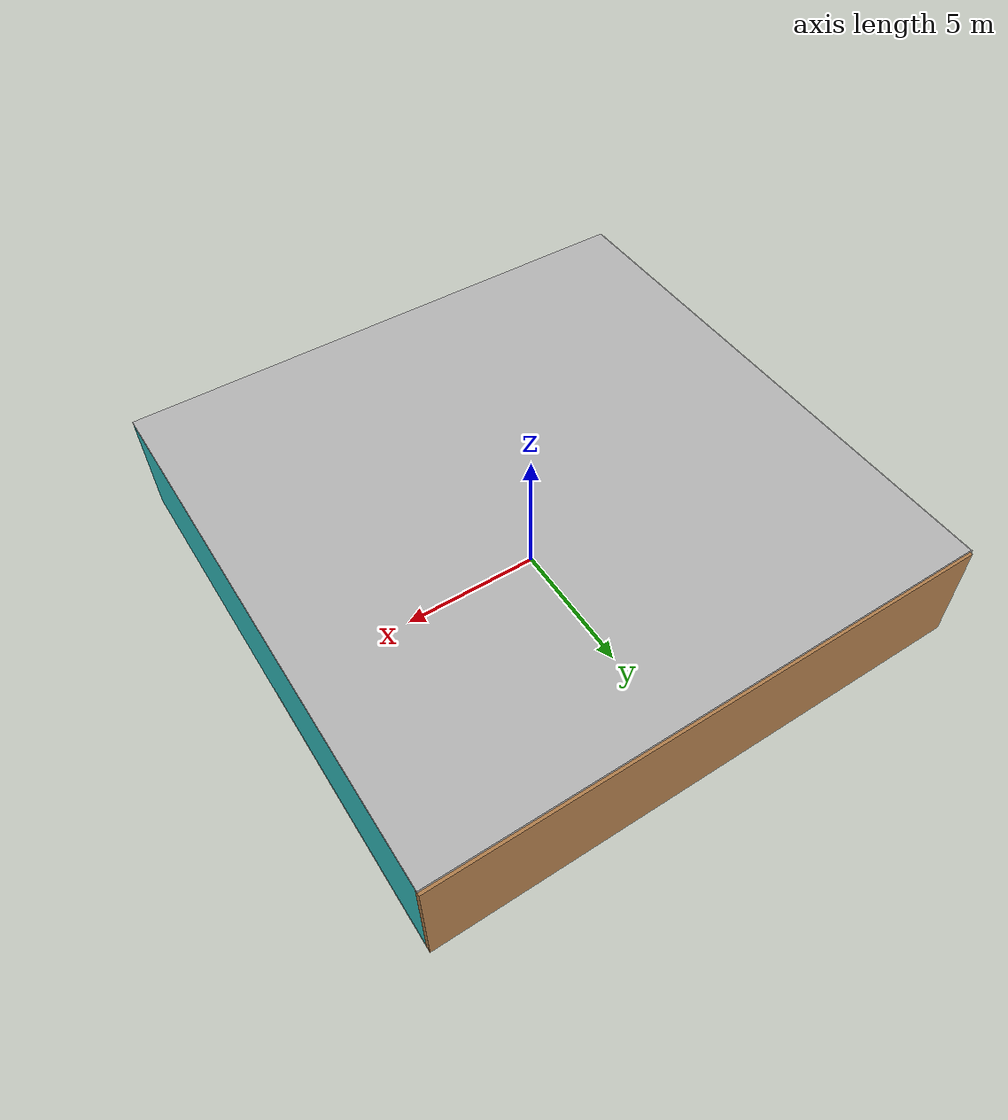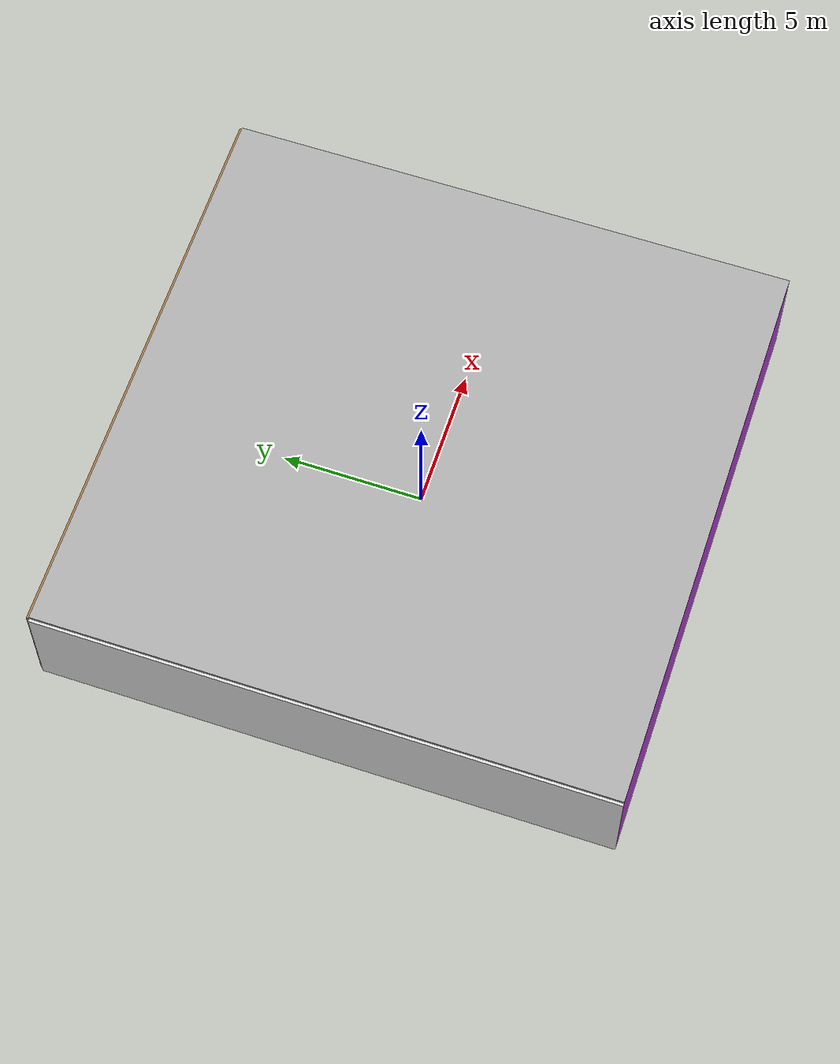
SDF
<sdf version="1.4">
 <world name="default">
  <physics type="ode">
   <max_step_size>0.001</max_step_size>
   <real_time_factor>1</real_time_factor>
   <real_time_update_rate>1000</real_time_update_rate>
   <gravity>0 0 -9.8</gravity>
  </physics>
  <scene><ambient>0.4 0.4 0.4 1</ambient><background>0.7 0.7 0.7 1</background><shadows>1</shadows></scene>
  <model name="Surrounding">
   <static>1</static>
   <link name="Ceiling">
    <collision name="Ceiling_Collision"><geometry><box><size>20 20 0.1</size></box></geometry></collision>
    <visual name="Ceiling_Visual">
     <geometry><box><size>20 20 0.1</size></box></geometry>
     <material>
      <script><uri>file://media/materials/scripts/gazebo.material</uri><name>Gazebo/CloudySky</name></script>
     </material>
    </visual>
    <pose>0 0 4.05 0 0 0</pose>
   </link>
   <link name="Wall_South">
    <collision name="Wall_South_Collision">
     <geometry><box><size>20 0 4</size></box></geometry>
     <pose>0 0 2 0 -0 0</pose>
    </collision>
    <visual name="Wall_South_Visual">
     <pose>0 0 2 0 -0 0</pose>
     <geometry><box><size>20 0 4</size></box></geometry>
     <material>
      <script><uri>file://media/materials/scripts/gazebo.material</uri><name>Gazebo/PurpleGlow</name></script>
     </material>
    </visual>
    <velocity_decay><linear>0</linear><angular>0</angular></velocity_decay>
    <pose>0 -10 0 0 -0 0</pose>
   </link>
   <link name="Wall_East">
    <collision name="Wall_21_Collision">
     <geometry><box><size>20 0 4</size></box></geometry>
     <pose>0 0 2 0 -0 0</pose>
    </collision>
    <visual name="Wall_21_Visual">
     <pose>0 0 2 0 -0 0</pose>
     <geometry><box><size>20 0 4</size></box></geometry>
     <material>
      <script><uri>file://media/materials/scripts/gazebo.material</uri><name>Gazebo/TurquoiseGlow</name></script>
     </material>
    </visual>
    <velocity_decay><linear>0</linear><angular>0</angular></velocity_decay>
    <pose>10 0 0 0 -0 1.5708</pose>
   </link>
   <link name="Wall_North">
    <collision name="Wall_22_Collision">
     <geometry><box><size>20 0.2 4</size></box></geometry>
     <pose>0 0 2 0 -0 0</pose>
    </collision>
    <visual name="Wall_22_Visual">
     <pose>0 0 2 0 -0 0</pose>
     <geometry><box><size>20 0.2 4</size></box></geometry>
     <material>
      <script><uri>file://media/materials/scripts/gazebo.material</uri><name>Gazebo/WoodFloor</name></script>
     </material>
    </visual>
    <velocity_decay><linear>0</linear><angular>0</angular></velocity_decay>
    <pose>0 10 0 0 -0 0</pose>
   </link>
   <link name="Wall_West">
    <collision name="Wall_23_Collision">
     <geometry><box><size>20 0.2 4</size></box></geometry>
     <pose>0 0 2 0 -0 0</pose>
    </collision>
    <visual name="Wall_23_Visual">
     <pose>0 0 2 0 -0 0</pose>
     <geometry><box><size>20 0.2 4</size></box></geometry>
     <material>
      <script><uri>file://media/materials/scripts/gazebo.material</uri><name>Gazebo/White</name></script>
     </material>
    </visual>
    <velocity_decay><linear>0</linear><angular>0</angular></velocity_decay>
    <pose>-10 0 0 0 0 -1.5708</pose>
   </link>
   <link name="Ground_link">
    <collision name="collision">
     <pose>0 0 .05 0 -0 0</pose>
     <geometry><box><size>20 20 0.1</size></box></geometry>
    </collision>
    <visual name="visual">
     <pose>0 0 .05 0 -0 0</pose>
     <geometry><box><size>20 20 0.1</size></box></geometry>
     <material>
      <script><uri>file://media/materials/scripts/gazebo.material</uri><name>Gazebo/PaintedWall</name></script>
     </material>
    </visual>
   </link>
   <static>1</static>
  </model>
  <spherical_coordinates>
   <surface_model>EARTH_WGS84</surface_model>
   <latitude_deg>0</latitude_deg>
   <longitude_deg>0</longitude_deg>
   <elevation>0</elevation>
   <heading_deg>0</heading_deg>
  </spherical_coordinates>
  <light name="lightball_0" type="diffuse">
   <diffuse>0.8 0.8 0.8 1</diffuse>
   <specular>0.2 0.2 0.2 1</specular>
   <attenuation>
    <range>100</range>
    <constant>0.7</constant>
    <linear>0.01</linear>
    <quadratic>0.001</quadratic>
   </attenuation>
   <direction>-0.5 0.1 -0.9</direction>
   <pose>9.64433875979 6.06521737326 1.02108152696 0 0 0</pose>
  </light>
  <light name="lightball_1" type="diffuse">
   <diffuse>0.8 0.8 0.8 1</diffuse>
   <specular>0.2 0.2 0.2 1</specular>
   <attenuation>
    <range>100</range>
    <constant>0.7</constant>
    <linear>0.01</linear>
    <quadratic>0.001</quadratic>
   </attenuation>
   <direction>-0.5 0.1 -0.9</direction>
   <pose>1.63910477076 8.01365467879 1.90745100916 0 0 0</pose>
  </light>
  <light name="lightball_2" type="diffuse">
   <diffuse>0.8 0.8 0.8 1</diffuse>
   <specular>0.2 0.2 0.2 1</specular>
   <attenuation>
    <range>100</range>
    <constant>0.7</constant>
    <linear>0.01</linear>
    <quadratic>0.001</quadratic>
   </attenuation>
   <direction>-0.5 0.1 -0.9</direction>
   <pose>-5.49925691482 -5.33679758363 1.08726005713 0 0 0</pose>
  </light>
  <light name="lightball_3" type="diffuse">
   <diffuse>0.8 0.8 0.8 1</diffuse>
   <specular>0.2 0.2 0.2 1</specular>
   <attenuation>
    <range>100</range>
    <constant>0.7</constant>
    <linear>0.01</linear>
    <quadratic>0.001</quadratic>
   </attenuation>
   <direction>-0.5 0.1 -0.9</direction>
   <pose>-0.00436062779611 -7.60900972718 3.07124576949 0 0 0</pose>
  </light>
  <light name="lightball_4" type="diffuse">
   <diffuse>0.8 0.8 0.8 1</diffuse>
   <specular>0.2 0.2 0.2 1</specular>
   <attenuation>
    <range>100</range>
    <constant>0.7</constant>
    <linear>0.01</linear>
    <quadratic>0.001</quadratic>
   </attenuation>
   <direction>-0.5 0.1 -0.9</direction>
   <pose>1.20841395962 -1.56496937089 1.50731816059 0 0 0</pose>
  </light>
  <light name="lightball_5" type="diffuse">
   <diffuse>0.8 0.8 0.8 1</diffuse>
   <specular>0.2 0.2 0.2 1</specular>
   <attenuation>
    <range>100</range>
    <constant>0.7</constant>
    <linear>0.01</linear>
    <quadratic>0.001</quadratic>
   </attenuation>
   <direction>-0.5 0.1 -0.9</direction>
   <pose>9.10153423154 4.28250438228 2.53291392313 0 0 0</pose>
  </light>
  <light name="lightball_6" type="diffuse">
   <diffuse>0.8 0.8 0.8 1</diffuse>
   <specular>0.2 0.2 0.2 1</specular>
   <attenuation>
    <range>100</range>
    <constant>0.7</constant>
    <linear>0.01</linear>
    <quadratic>0.001</quadratic>
   </attenuation>
   <direction>-0.5 0.1 -0.9</direction>
   <pose>4.28630937831 3.11439465343 0.702772582099 0 0 0</pose>
  </light>
  <light name="lightball_7" type="diffuse">
   <diffuse>0.8 0.8 0.8 1</diffuse>
   <specular>0.2 0.2 0.2 1</specular>
   <attenuation>
    <range>100</range>
    <constant>0.7</constant>
    <linear>0.01</linear>
    <quadratic>0.001</quadratic>
   </attenuation>
   <direction>-0.5 0.1 -0.9</direction>
   <pose>2.25898340931 2.76677687008 2.07072741404 0 0 0</pose>
  </light>
  <light name="lightball_8" type="diffuse">
   <diffuse>0.8 0.8 0.8 1</diffuse>
   <specular>0.2 0.2 0.2 1</specular>
   <attenuation>
    <range>100</range>
    <constant>0.7</constant>
    <linear>0.01</linear>
    <quadratic>0.001</quadratic>
   </attenuation>
   <direction>-0.5 0.1 -0.9</direction>
   <pose>-1.51217290778 -1.85833640146 2.06361758028 0 0 0</pose>
  </light>
  <light name="lightball_9" type="diffuse">
   <diffuse>0.8 0.8 0.8 1</diffuse>
   <specular>0.2 0.2 0.2 1</specular>
   <attenuation>
    <range>100</range>
    <constant>0.7</constant>
    <linear>0.01</linear>
    <quadratic>0.001</quadratic>
   </attenuation>
   <direction>-0.5 0.1 -0.9</direction>
   <pose>-8.63035327085 -4.18936028021 2.56653884027 0 0 0</pose>
  </light>
  <light name="lightball_10" type="diffuse">
   <diffuse>0.8 0.8 0.8 1</diffuse>
   <specular>0.2 0.2 0.2 1</specular>
   <attenuation>
    <range>100</range>
    <constant>0.7</constant>
    <linear>0.01</linear>
    <quadratic>0.001</quadratic>
   </attenuation>
   <direction>-0.5 0.1 -0.9</direction>
   <pose>-5.89415311072 -7.96152308152 3.76848657116 0 0 0</pose>
  </light>
  <light name="lightball_11" type="diffuse">
   <diffuse>0.8 0.8 0.8 1</diffuse>
   <specular>0.2 0.2 0.2 1</specular>
   <attenuation>
    <range>100</range>
    <constant>0.7</constant>
    <linear>0.01</linear>
    <quadratic>0.001</quadratic>
   </attenuation>
   <direction>-0.5 0.1 -0.9</direction>
   <pose>4.86135441467 -6.17201936254 3.78555561408 0 0 0</pose>
  </light>
  <light name="lightball_12" type="diffuse">
   <diffuse>0.8 0.8 0.8 1</diffuse>
   <specular>0.2 0.2 0.2 1</specular>
   <attenuation>
    <range>100</range>
    <constant>0.7</constant>
    <linear>0.01</linear>
    <quadratic>0.001</quadratic>
   </attenuation>
   <direction>-0.5 0.1 -0.9</direction>
   <pose>-8.53340460183 -8.6665996598 3.58439222172 0 0 0</pose>
  </light>
  <light name="lightball_13" type="diffuse">
   <diffuse>0.8 0.8 0.8 1</diffuse>
   <specular>0.2 0.2 0.2 1</specular>
   <attenuation>
    <range>100</range>
    <constant>0.7</constant>
    <linear>0.01</linear>
    <quadratic>0.001</quadratic>
   </attenuation>
   <direction>-0.5 0.1 -0.9</direction>
   <pose>-0.804196314632 3.95148139962 0.977262549789 0 0 0</pose>
  </light>
  <include><uri>model://table</uri><pose>-6.72204330326 -6.91686908233 0 0 0 2.2991340438</pose></include>
  <include>
   <uri>model://robocup_3Dsim_goal</uri>
   <pose>-7.85546980453 6.88535962519 0 0 0 2.40449168751</pose>
  </include>
  <include>
   <uri>model://robocup_3Dsim_goal</uri>
   <pose>1.27698009352 -7.36676092079 0 0 0 1.65292249637</pose>
  </include>
  <include>
   <uri>model://robocup_3Dsim_goal</uri>
   <pose>5.19477877479 -7.94503159165 0 0 0 0.127210409981</pose>
  </include>
  <include><uri>model://table</uri><pose>7.0083798905 2.12533576854 0 0 0 0.644511885078</pose></include>
 </world>
</sdf>

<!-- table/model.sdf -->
<sdf version="1.5">
  <model name="table">
    <static>true</static>
    <link name="link">
      <collision name="surface">
        <pose>0 0 1.0 0 0 0</pose>
        <geometry>
          <box>
            <size>1.5 0.8 0.03</size>
          </box>
        </geometry>
        <surface>
          <friction>
            <ode>
              <mu>0.6</mu>
              <mu2>0.6</mu2>
            </ode>
          </friction>
        </surface>
      </collision>
      <visual name="visual1">
        <pose>0 0 1.0 0 0 0</pose>
        <geometry>
          <box>
            <size>1.5 0.8 0.03</size>
          </box>
        </geometry>
        <material>
          <script>
            <uri>model://media/materials/scripts/gazebo.material</uri>
            <name>Gazebo/Wood</name>
          </script>
        </material>
      </visual>
      <collision name="front_left_leg">
        <pose>0.68 0.38 0.5 0 0 0</pose>
        <geometry>
          <cylinder>
            <radius>0.02</radius>
            <length>1.0</length>
          </cylinder>
        </geometry>
      </collision>
      <visual name="front_left_leg">
        <pose>0.68 0.38 0.5 0 0 0</pose>
        <geometry>
          <cylinder>
            <radius>0.02</radius>
            <length>1.0</length>
          </cylinder>
        </geometry>
        <material>
          <script>
            <uri>model://media/materials/scripts/gazebo.material</uri>
            <name>Gazebo/Grey</name>
          </script>
        </material>
      </visual>
      <collision name="front_right_leg">
        <pose>0.68 -0.38 0.5 0 0 0</pose>
        <geometry>
          <cylinder>
            <radius>0.02</radius>
            <length>1.0</length>
          </cylinder>
        </geometry>
      </collision>
      <visual name="front_right_leg">
        <pose>0.68 -0.38 0.5 0 0 0</pose>
        <geometry>
          <cylinder>
            <radius>0.02</radius>
            <length>1.0</length>
          </cylinder>
        </geometry>
        <material>
          <script>
            <uri>model://media/materials/scripts/gazebo.material</uri>
            <name>Gazebo/Grey</name>
          </script>
        </material>
      </visual>
      <collision name="back_right_leg">
        <pose>-0.68 -0.38 0.5 0 0 0</pose>
        <geometry>
          <cylinder>
            <radius>0.02</radius>
            <length>1.0</length>
          </cylinder>
        </geometry>
      </collision>
      <visual name="back_right_leg">
        <pose>-0.68 -0.38 0.5 0 0 0</pose>
        <geometry>
          <cylinder>
            <radius>0.02</radius>
            <length>1.0</length>
          </cylinder>
        </geometry>
        <material>
          <script>
            <uri>model://media/materials/scripts/gazebo.material</uri>
            <name>Gazebo/Grey</name>
          </script>
        </material>
      </visual>
      <collision name="back_left_leg">
        <pose>-0.68 0.38 0.5 0 0 0</pose>
        <geometry>
          <cylinder>
            <radius>0.02</radius>
            <length>1.0</length>
          </cylinder>
        </geometry>
      </collision>
      <visual name="back_left_leg">
        <pose>-0.68 0.38 0.5 0 0 0</pose>
        <geometry>
          <cylinder>
            <radius>0.02</radius>
            <length>1.0</length>
          </cylinder>
        </geometry>
        <material>
          <script>
            <uri>model://media/materials/scripts/gazebo.material</uri>
            <name>Gazebo/Grey</name>
          </script>
        </material>
      </visual>
    </link>
  </model>
</sdf>

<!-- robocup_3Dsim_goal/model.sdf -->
<sdf version="1.5">
  <model name="robocup_3d_goal">
    <static>true</static>
    <link name="left_post">
      <pose>0 1.05 0.45 0 0 0</pose>
      <collision name="collision">
        <geometry>
          <cylinder>
            <radius>0.05</radius>
            <length>0.9</length>
          </cylinder>
        </geometry>
      </collision>
      <visual name="visual">
        <geometry>
          <cylinder>
            <radius>0.05</radius>
            <length>0.9</length>
          </cylinder>
        </geometry>
        <material>
          <script>
            <uri>file://media/materials/scripts/gazebo.material</uri>
            <name>Gazebo/ZincYellow</name>
          </script>
        </material>
      </visual>
    </link>
    <link name="left_support_horiz_lower">
      <pose>0.30 1.05 0.01 0 0 0</pose>
      <collision name="collision">
        <geometry>
          <box>
            <size>0.50 0.02 0.02</size>
          </box>
        </geometry>
      </collision>
      <visual name="visual">
        <geometry>
          <box>
            <size>0.50 0.02 0.02</size>
          </box>
        </geometry>
        <material>
          <script>
            <uri>file://media/materials/scripts/gazebo.material</uri>
            <name>Gazebo/White</name>
          </script>
        </material>
      </visual>
    </link>
    <link name="left_support_horiz_upper">
      <pose>0.30 1.05 0.79 0 0 0</pose>
      <collision name="collision">
        <geometry>
          <box>
            <size>0.50 0.02 0.02</size>
          </box>
        </geometry>
      </collision>
      <visual name="visual">
        <geometry>
          <box>
            <size>0.50 0.02 0.02</size>
          </box>
        </geometry>
        <material>
          <script>
            <uri>file://media/materials/scripts/gazebo.material</uri>
            <name>Gazebo/White</name>
          </script>
        </material>
      </visual>
    </link>
    <link name="left_support_vertical">
      <pose>0.56 1.05 0.4 0 1.5708 0</pose>
      <collision name="collision">
        <geometry>
          <box>
            <size>0.80 0.02 0.02</size>
          </box>
        </geometry>
      </collision>
      <visual name="visual">
        <geometry>
          <box>
            <size>0.80 0.02 0.02</size>
          </box>
        </geometry>
        <material>
          <script>
            <uri>file://media/materials/scripts/gazebo.material</uri>
            <name>Gazebo/White</name>
          </script>
        </material>
      </visual>
    </link>
    <link name="right_support_horiz_lower">
      <pose>0.30 -1.05 0.01 0 0 0</pose>
      <collision name="collision">
        <geometry>
          <box>
            <size>0.50 0.02 0.02</size>
          </box>
        </geometry>
      </collision>
      <visual name="visual">
        <geometry>
          <box>
            <size>0.50 0.02 0.02</size>
          </box>
        </geometry>
        <material>
          <script>
            <uri>file://media/materials/scripts/gazebo.material</uri>
            <name>Gazebo/White</name>
          </script>
        </material>
      </visual>
    </link>
    <link name="right_support_horiz_upper">
      <pose>0.30 -1.05 0.79 0 0 0</pose>
      <collision name="collision">
        <geometry>
          <box>
            <size>0.50 0.02 0.02</size>
          </box>
        </geometry>
      </collision>
      <visual name="visual">
        <geometry>
          <box>
            <size>0.50 0.02 0.02</size>
          </box>
        </geometry>
        <material>
          <script>
            <uri>file://media/materials/scripts/gazebo.material</uri>
            <name>Gazebo/White</name>
          </script>
        </material>
      </visual>
    </link>
    <link name="right_support_vertical">
      <pose>0.56 -1.05 0.4 0 1.5708 0</pose>
      <collision name="collision">
        <geometry>
          <box>
            <size>0.80 0.02 0.02</size>
          </box>
        </geometry>
      </collision>
      <visual name="visual">
        <geometry>
          <box>
            <size>0.80 0.02 0.02</size>
          </box>
        </geometry>
        <material>
          <script>
            <uri>file://media/materials/scripts/gazebo.material</uri>
            <name>Gazebo/White</name>
          </script>
        </material>
      </visual>
    </link>
    <link name="center_support_horiz_lower">
      <pose>0.56 0 0.01 0 1.5708 0</pose>
      <collision name="collision">
        <geometry>
          <box>
            <size>0.02 2.08 0.02</size>
          </box>
        </geometry>
      </collision>
      <visual name="visual">
        <geometry>
          <box>
            <size>0.02 2.08 0.02</size>
          </box>
        </geometry>
        <material>
          <script>
            <uri>file://media/materials/scripts/gazebo.material</uri>
            <name>Gazebo/White</name>
          </script>
        </material>
      </visual>
    </link>
    <link name="center_support_horiz_upper">
      <pose>0.56 0 0.79 0 1.5708 0</pose>
      <collision name="collision">
        <geometry>
          <box>
            <size>0.02 2.08 0.02</size>
          </box>
        </geometry>
      </collision>
      <visual name="visual">
        <geometry>
          <box>
            <size>0.02 2.08 0.02</size>
          </box>
        </geometry>
        <material>
          <script>
            <uri>file://media/materials/scripts/gazebo.material</uri>
            <name>Gazebo/White</name>
          </script>
        </material>
      </visual>
    </link>
    <link name="right_post">
      <pose>0 -1.05 0.45 0 0 0</pose>
      <collision name="collision">
        <geometry>
          <cylinder>
            <radius>0.05</radius>
            <length>0.9</length>
          </cylinder>
        </geometry>
      </collision>
      <visual name="visual">
        <geometry>
          <cylinder>
            <radius>0.05</radius>
            <length>0.9</length>
          </cylinder>
        </geometry>
        <material>
          <script>
            <uri>file://media/materials/scripts/gazebo.material</uri>
            <name>Gazebo/ZincYellow</name>
          </script>
        </material>
      </visual>
    </link>
    <link name="crossbar">
      <pose>0 0 0.85 1.57 1.57 0</pose>
      <collision name="collision">
        <geometry>
          <cylinder>
            <radius>0.05</radius>
            <length>2.0</length>
          </cylinder>
        </geometry>
      </collision>
      <visual name="visual">
        <geometry>
          <cylinder>
            <radius>0.05</radius>
            <length>2.0</length>
          </cylinder>
        </geometry>
        <material>
          <script>
            <uri>file://media/materials/scripts/gazebo.material</uri>
            <name>Gazebo/ZincYellow</name>
          </script>
        </material>
      </visual>
    </link>
    <link name="center_net">
      <pose>0.56 0 0.40 0 0 0</pose>
      <collision name="collision">
        <geometry>
          <box>
            <size>0.01 2.1 0.80</size>
          </box>
        </geometry>
      </collision>
      <visual name="visual">
        <geometry>
          <box>
            <size>0.01 2.1 0.80</size>
          </box>
        </geometry>
        <material>
          <script>
            <uri>model://../model_source/models/robocup09_spl_field/materials/scripts/</uri>
            <uri>model://../model_source/models/robocup09_spl_field/materials/textures/</uri>
            <name>RoboCup/Net</name>
          </script>
        </material>
      </visual>
    </link>
    <link name="left_net">
      <pose>0.30 1.05 0.40 0 0 0</pose>
      <collision name="collision">
        <geometry>
          <box>
            <size>0.50 0.01 0.76</size>
          </box>
        </geometry>
      </collision>
      <visual name="visual">
        <geometry>
          <box>
            <size>0.50 0.01 0.76</size>
          </box>
        </geometry>
        <material>
          <script>
            <uri>model://../model_source/models/robocup09_spl_field/materials/scripts/</uri>
            <uri>model://../model_source/models/robocup09_spl_field/materials/textures/</uri>
            <name>RoboCup/Net</name>
          </script>
        </material>
      </visual>
    </link>
    <link name="right_net">
      <pose>0.30 -1.05 0.40 0 0 0</pose>
      <collision name="collision">
        <geometry>
          <box>
            <size>0.50 0.01 0.76</size>
          </box>
        </geometry>
      </collision>
      <visual name="visual">
        <geometry>
          <box>
            <size>0.50 0.01 0.76</size>
          </box>
        </geometry>
        <material>
          <script>
            <uri>model://../model_source/models/robocup09_spl_field/materials/scripts/</uri>
            <uri>model://../model_source/models/robocup09_spl_field/materials/textures/</uri>
            <name>RoboCup/Net</name>
          </script>
        </material>
      </visual>
    </link>
  </model>
</sdf>
